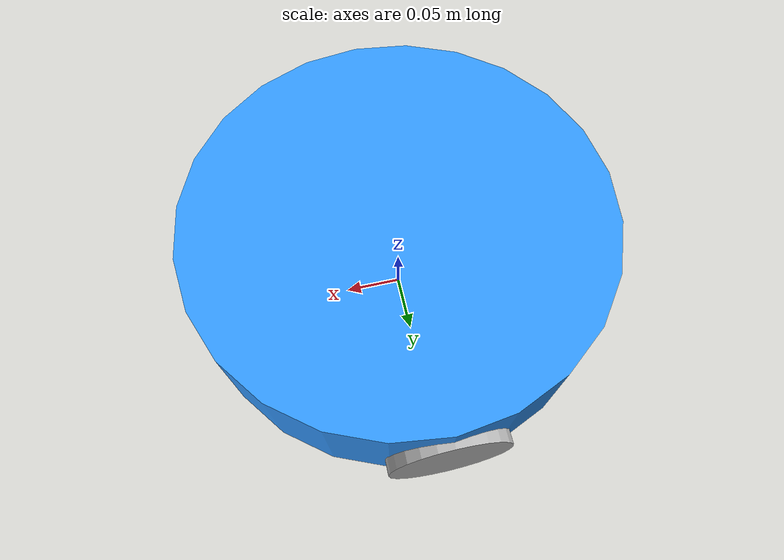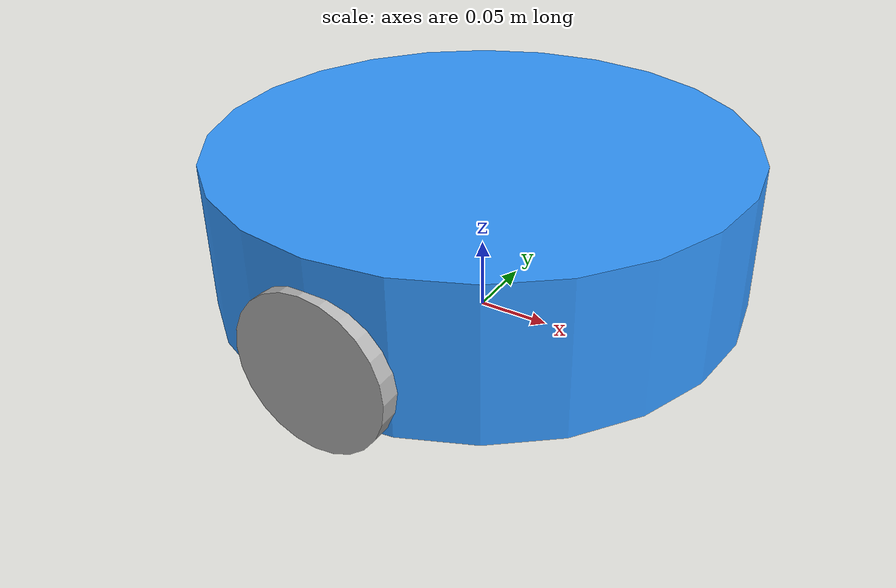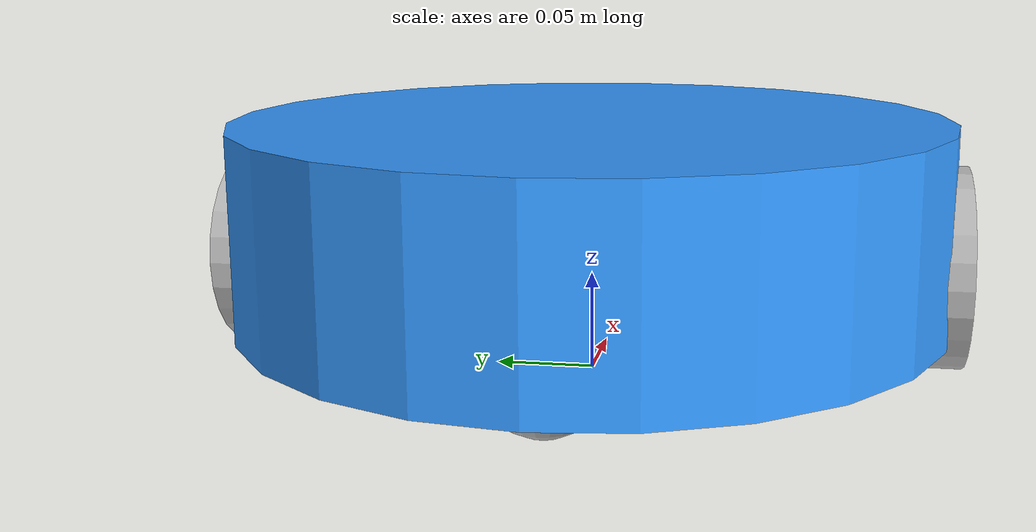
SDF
<?xml version="1.0" ?>
<sdf version="1.9">
  <model name="reactive_bot">
    <pose>0 0 0.08 0 0 0</pose>

    <link name="chassis">
      <inertial>
        <mass>3.0</mass>
        <inertia>
          <ixx>0.05</ixx>
          <iyy>0.05</iyy>
          <izz>0.08</izz>
          <ixy>0</ixy>
          <ixz>0</ixz>
          <iyz>0</iyz>
        </inertia>
      </inertial>

      <collision name="collision">
        <geometry>
          <cylinder>
            <radius>0.18</radius>
            <length>0.10</length>
          </cylinder>
        </geometry>
      </collision>

      <visual name="visual">
        <geometry>
          <cylinder>
            <radius>0.18</radius>
            <length>0.10</length>
          </cylinder>
        </geometry>
        <material>
          <ambient>0.2 0.6 1 1</ambient>
          <diffuse>0.2 0.6 1 1</diffuse>
        </material>
      </visual>

      <sensor name="lidar" type="gpu_lidar">
        <pose>0 0 0.25 0 0 0</pose>
        <topic>/scan</topic>
        <update_rate>10</update_rate>
        <ray>
          <scan>
            <horizontal>
              <samples>360</samples>
              <resolution>1</resolution>
              <min_angle>-3.14159</min_angle>
              <max_angle>3.14159</max_angle>
            </horizontal>
            <vertical>
              <samples>1</samples>
              <resolution>1</resolution>
              <min_angle>0</min_angle>
              <max_angle>0</max_angle>
            </vertical>
          </scan>
          <range>
            <min>0.10</min>
            <max>8.0</max>
            <resolution>0.01</resolution>
          </range>
        </ray>
        <always_on>1</always_on>
        <visualize>true</visualize>
      </sensor>
    </link>

    <link name="left_wheel">
      <pose>0 0.17 -0.02 -1.5708 0 0</pose>
      <inertial>
        <mass>0.3</mass>
        <inertia>
          <ixx>0.001</ixx><iyy>0.001</iyy><izz>0.001</izz>
          <ixy>0</ixy><ixz>0</ixz><iyz>0</iyz>
        </inertia>
      </inertial>
      <collision name="collision">
        <geometry>
          <cylinder><radius>0.05</radius><length>0.03</length></cylinder>
        </geometry>
        <surface>
          <friction><ode><mu>1.0</mu><mu2>1.0</mu2></ode></friction>
        </surface>
      </collision>
      <visual name="visual">
        <geometry>
          <cylinder><radius>0.05</radius><length>0.03</length></cylinder>
        </geometry>
      </visual>
    </link>

    <link name="right_wheel">
      <pose>0 -0.17 -0.02 -1.5708 0 0</pose>
      <inertial>
        <mass>0.3</mass>
        <inertia>
          <ixx>0.001</ixx><iyy>0.001</iyy><izz>0.001</izz>
          <ixy>0</ixy><ixz>0</ixz><iyz>0</iyz>
        </inertia>
      </inertial>
      <collision name="collision">
        <geometry>
          <cylinder><radius>0.05</radius><length>0.03</length></cylinder>
        </geometry>
        <surface>
          <friction><ode><mu>1.0</mu><mu2>1.0</mu2></ode></friction>
        </surface>
      </collision>
      <visual name="visual">
        <geometry>
          <cylinder><radius>0.05</radius><length>0.03</length></cylinder>
        </geometry>
      </visual>
    </link>

    <link name="caster">
      <pose>-0.13 0 -0.04 0 0 0</pose>
      <inertial>
        <mass>0.1</mass>
        <inertia>
          <ixx>0.0001</ixx><iyy>0.0001</iyy><izz>0.0001</izz>
          <ixy>0</ixy><ixz>0</ixz><iyz>0</iyz>
        </inertia>
      </inertial>
      <collision name="collision">
        <geometry>
          <sphere><radius>0.03</radius></sphere>
        </geometry>
        <surface>
          <friction><ode><mu>0.0</mu><mu2>0.0</mu2></ode></friction>
        </surface>
      </collision>
      <visual name="visual">
        <geometry>
          <sphere><radius>0.03</radius></sphere>
        </geometry>
      </visual>
    </link>

    <joint name="left_wheel_joint" type="revolute">
      <parent>chassis</parent>
      <child>left_wheel</child>
      <axis>
        <xyz>0 0 1</xyz>
        <limit>
          <lower>-1e+16</lower>
          <upper>1e+16</upper>
          <effort>0.8</effort>
          <velocity>6.0</velocity>
        </limit>
      </axis>
    </joint>

    <joint name="right_wheel_joint" type="revolute">
      <parent>chassis</parent>
      <child>right_wheel</child>
      <axis>
        <xyz>0 0 1</xyz>
        <limit>
          <lower>-1e+16</lower>
          <upper>1e+16</upper>
          <effort>0.8</effort>
          <velocity>6.0</velocity>
        </limit>
      </axis>
    </joint>

    <joint name="caster_joint" type="ball">
      <parent>chassis</parent>
      <child>caster</child>
    </joint>

    <plugin filename="gz-sim-diff-drive-system" name="gz::sim::systems::DiffDrive">
      <left_joint>left_wheel_joint</left_joint>
      <right_joint>right_wheel_joint</right_joint>
      <wheel_separation>0.34</wheel_separation>
      <wheel_radius>0.05</wheel_radius>
      <odom_publish_frequency>20</odom_publish_frequency>
      <topic>/cmd_vel</topic>
      <odom_topic>/odom</odom_topic>

      <max_linear_acceleration>0.5</max_linear_acceleration>
      <max_angular_acceleration>1.5</max_angular_acceleration>
    </plugin>
  </model>
</sdf>
